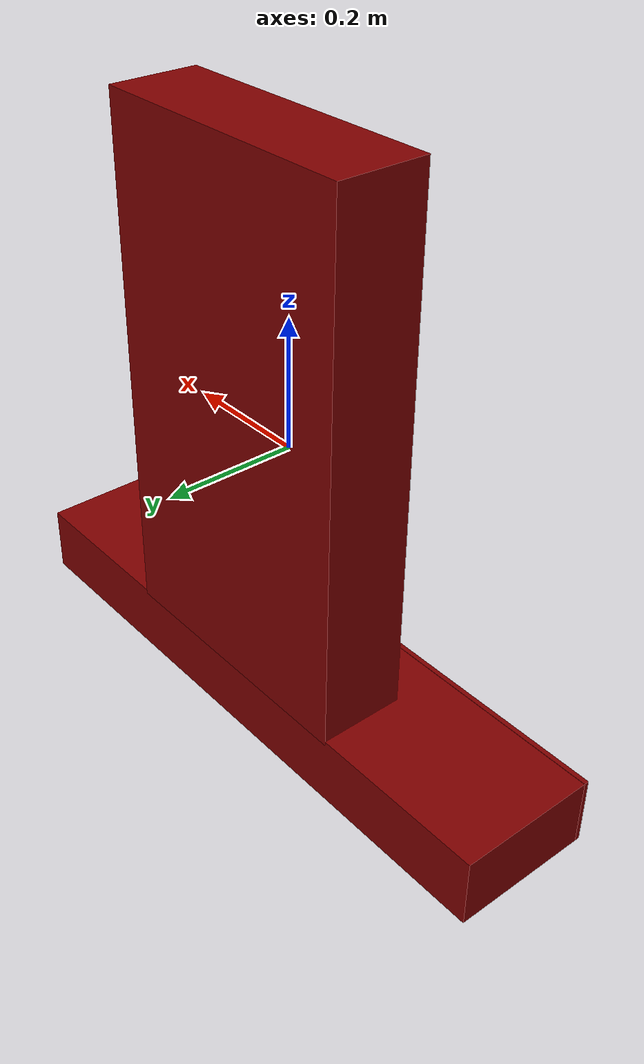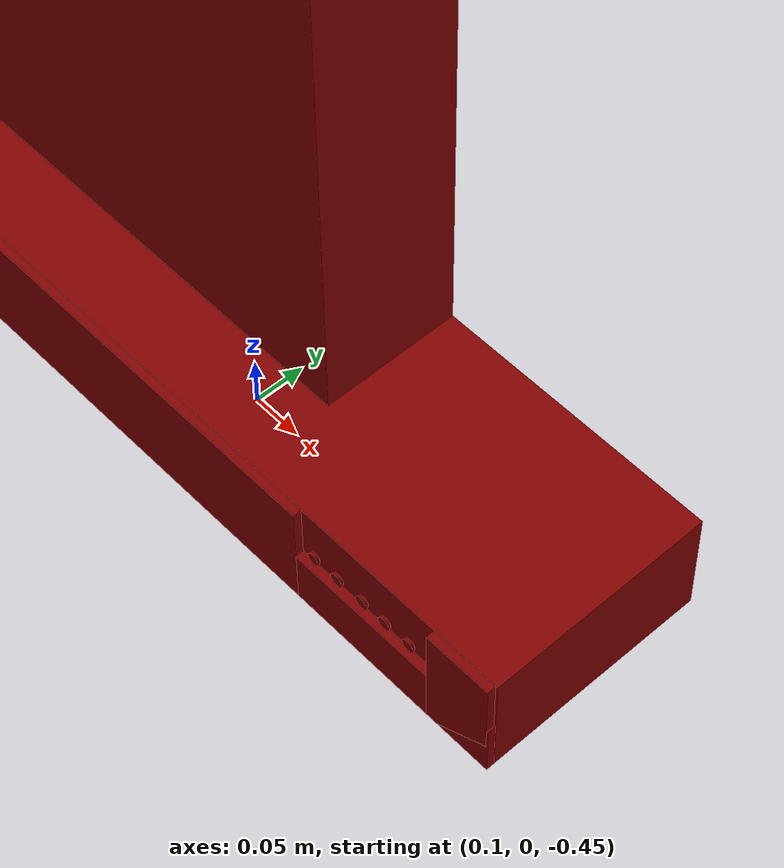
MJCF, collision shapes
<?xml version='1.0' encoding='UTF-8'?>
<mujoco model="model">
  <compiler angle="radian"/>
  <asset>
    <mesh file="visuals/Body001.obj" name="Body001_vis"/>
    <mesh file="visuals/Button001.obj" name="Button001_vis"/>
    <mesh file="visuals/Button002.obj" name="Button002_vis"/>
    <mesh file="visuals/Button003.obj" name="Button003_vis"/>
    <mesh file="visuals/Button004.obj" name="Button004_vis"/>
    <mesh file="visuals/Button005.obj" name="Button005_vis"/>
    <texture file="visuals/T_BC001.png" name="Body001_material" type="2d"/>
    <material name="Body001_material" rgba="1 1 1 1.0" texture="Body001_material" shininess="0.4472135901451111" specular="0.3103448502657381"/>
    <texture file="visuals/T_BC001.png" name="Button001_material" type="2d"/>
    <material name="Button001_material" rgba="1 1 1 1.0" texture="Button001_material" shininess="0.4472135901451111" specular="0.3103448502657381"/>
    <texture file="visuals/T_BC001.png" name="Button002_material" type="2d"/>
    <material name="Button002_material" rgba="1 1 1 1.0" texture="Button002_material" shininess="0.4472135901451111" specular="0.3103448502657381"/>
    <texture file="visuals/T_BC001.png" name="Button003_material" type="2d"/>
    <material name="Button003_material" rgba="1 1 1 1.0" texture="Button003_material" shininess="0.4472135901451111" specular="0.3103448502657381"/>
    <texture file="visuals/T_BC001.png" name="Button004_material" type="2d"/>
    <material name="Button004_material" rgba="1 1 1 1.0" texture="Button004_material" shininess="0.4472135901451111" specular="0.3103448502657381"/>
    <texture file="visuals/T_BC001.png" name="Button005_material" type="2d"/>
    <material name="Button005_material" rgba="1 1 1 1.0" texture="Button005_material" shininess="0.4472135901451111" specular="0.3103448502657381"/>
  </asset>
  <default>
    <default class="visual">
      <geom conaffinity="0" contype="0" group="1" type="mesh"/>
    </default>
    <default class="collision">
      <geom group="0" rgba="0.5 0 0 0.5"/>
    </default>
    <default class="spawn">
      <geom group="0" rgba="1 1 1 0.5" contype="0" conaffinity="0"/>
      <site group="0" rgba="1 1 1 0.5"/>
    </default>
    <default class="region">
      <geom group="1" conaffinity="0" contype="0" rgba="0 1 0 0"/>
    </default>
  </default>
  <worldbody>
    <body>
      <body name="object">
        <geom mesh="Body001_vis" type="mesh" solimp="0.998 0.998 0.001" solref="0.001 1" density="100" friction="0.95 0.3 0.1" class="visual" material="Body001_material"/>
        <geom class="collision" type="box" pos="-0.000057 0.004826 -0.380829" size="0.49480298161506653 0.10801117867231369 0.05452725291252136" quat="1.0 0.0 0.0 0.0"/>
        <geom class="collision" type="box" pos="-0.107705 -0.107489 -0.380829" size="0.3871558606624603 0.003852269146591425 0.05452728271484375" quat="1.0 0.0 0.0 0.0"/>
        <geom class="collision" type="box" pos="0.387170 -0.107489 -0.407953" size="0.10769140720367432 0.0038522675167769194 0.027403932064771652" quat="1.0 0.0 0.0 0.0"/>
        <geom class="collision" type="box" pos="0.460142 -0.107489 -0.380829" size="0.03274277225136757 0.003852272406220436 0.05452735349535942" quat="1.0 0.0 0.0 0.0"/>
        <geom class="collision" type="box" pos="0.000233 0.045463 0.070559" size="0.21860715746879578 0.06737446039915085 0.40364474058151245" quat="1.0 0.0 0.0 0.0"/>
        <geom class="collision" type="box" pos="0.012477 0.052315 -0.453813" size="0.049793727695941925 0.009721738286316395 0.020390000194311142" quat="1.0 0.0 0.0 0.0"/>
        <body name="Button001">
          <joint axis="0.0 1.0 0.0" pos="0.407984 -0.111934 -0.359223" limited="true" name="Button001_joint" range="0.0 0.002" type="slide" damping="1" frictionloss="1" armature=".01" stiffness="0.05"/>
          <geom mesh="Button001_vis" type="mesh" solimp="0.998 0.998 0.001" solref="0.001 1" density="100" friction="0.95 0.3 0.1" class="visual" material="Button001_material"/>
          <geom class="collision" type="cylinder" pos="0.408142 -0.111539 -0.359118" size="0.006279649678617716 0.0011689672246575356" quat="0.7071068286895752 0.7071067690849304 0.0 0.0"/>
        </body>
        <body name="Button002">
          <joint axis="0.0 1.0 0.0" pos="0.381559 -0.111814 -0.359184" limited="true" name="Button002_joint" range="0.0 0.002" type="slide" damping="1" frictionloss="1" armature=".01" stiffness="0.05"/>
          <geom mesh="Button002_vis" type="mesh" solimp="0.998 0.998 0.001" solref="0.001 1" density="100" friction="0.95 0.3 0.1" class="visual" material="Button002_material"/>
          <geom class="collision" type="cylinder" pos="0.381498 -0.111676 -0.359118" size="0.006255124695599079 0.001088082673959434" quat="0.7071068286895752 0.7071067690849304 0.0 0.0"/>
        </body>
        <body name="Button003">
          <joint axis="0.0 1.0 0.0" pos="0.356123 -0.112081 -0.359121" limited="true" name="Button003_joint" range="0.0 0.002" type="slide" damping="1" frictionloss="1" armature=".01" stiffness="0.05"/>
          <geom mesh="Button003_vis" type="mesh" solimp="0.998 0.998 0.001" solref="0.001 1" density="100" friction="0.95 0.3 0.1" class="visual" material="Button003_material"/>
          <geom class="collision" type="cylinder" pos="0.356137 -0.111360 -0.359113" size="0.006321657449007034 0.001099655986763537" quat="0.7071068286895752 0.7071067690849304 0.0 0.0"/>
        </body>
        <body name="Button004">
          <joint axis="0.0 1.0 0.0" pos="0.328027 -0.112394 -0.359319" limited="true" name="Button004_joint" range="0.0 0.002" type="slide" damping="1" frictionloss="1" armature=".01" stiffness="0.05"/>
          <geom mesh="Button004_vis" type="mesh" solimp="0.998 0.998 0.001" solref="0.001 1" density="100" friction="0.95 0.3 0.1" class="visual" material="Button004_material"/>
          <geom class="collision" type="cylinder" pos="0.328069 -0.111602 -0.359118" size="0.006316614802926779 0.0010987790301442146" quat="0.7071068286895752 0.7071067690849304 0.0 0.0"/>
        </body>
        <body name="Button005">
          <joint axis="0.0 1.0 0.0" pos="0.301706 -0.112200 -0.359248" limited="true" name="Button005_joint" range="0.0 0.002" type="slide" damping="1" frictionloss="1" armature=".01" stiffness="0.05"/>
          <geom mesh="Button005_vis" type="mesh" solimp="0.998 0.998 0.001" solref="0.001 1" density="100" friction="0.95 0.3 0.1" class="visual" material="Button005_material"/>
          <geom class="collision" type="cylinder" pos="0.301734 -0.111476 -0.359118" size="0.005817881785333157 0.0012980321189388633" quat="0.7071068286895752 0.7071067690849304 0.0 0.0"/>
        </body>
        <geom class="region" name="reg_main" type="box" pos="-0.0002925000000000011 -0.0010040000000000049 -0.0017705000000000082" size="0.4915625 0.111843 0.4717575"/>
      </body>
    </body>
  </worldbody>
  <actuator>
    <motor name="Button001_joint_actuator" joint="Button001_joint" gear="0.5"/>
    <motor name="Button002_joint_actuator" joint="Button002_joint" gear="0.5"/>
    <motor name="Button003_joint_actuator" joint="Button003_joint" gear="0.5"/>
    <motor name="Button004_joint_actuator" joint="Button004_joint" gear="0.5"/>
    <motor name="Button005_joint_actuator" joint="Button005_joint" gear="0.5"/>
  </actuator>
</mujoco>
